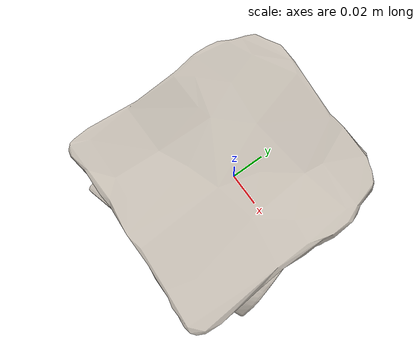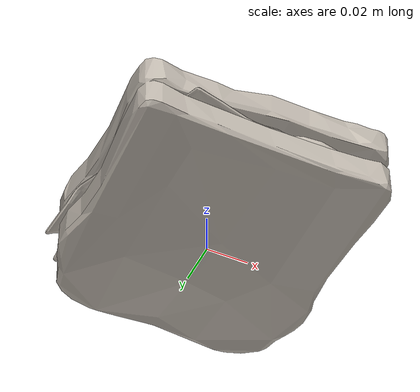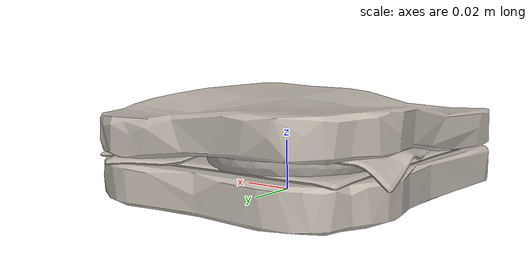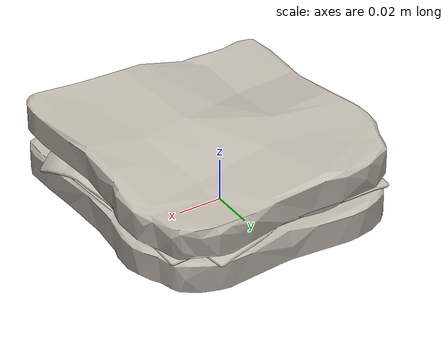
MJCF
<?xml version="1.0" encoding="utf-8"?>
<mujoco model="sandwich">
  <compiler angle="radian" meshdir="assets" texturedir="assets" autolimits="true"/>
  <asset>
    <mesh file="bread.obj"/>
    <mesh file="cheese.obj"/>
    <mesh file="tomatoes.obj"/>
    <mesh file="sandwich_collision.obj"/>
    <mesh file="sandwich_collision_rounded.obj"/>
    <texture type="2d" name="bread" file="bread_toasted_diffuse.png"/>
    <texture type="2d" name="cheese" file="cheese_diffuse.png"/>
    <texture type="2d" name="tomato" file="tomato_diffuse.png"/>
    <material name="bread" specular="0.2" shininess="0.2" texture="bread"/>
    <material name="cheese" specular="0.2" shininess="0.2" texture="cheese"/>
    <material name="tomato" specular="0.2" shininess="0.2" texture="tomato"/>
  </asset>
  <default>
    <default class="sandwich">
      <default class="visual">
        <geom type="mesh" mass="0.1" contype="0" conaffinity="0" group="2"/>
      </default>
      <default class="collision">
        <geom type="mesh" mass="0" group="3" solimp="0.95 0.98 0.001" solref="0.004 1" friction="0.3" priority="1"/>
      </default>
    </default>
  </default>
  <worldbody>
    <body name="sandwich" childclass="sandwich">
      <geom name="bread" mesh="bread" class="visual" material="bread" euler="1.5708 0 0"/>
      <geom name="cheese" mesh="cheese" class="visual" material="cheese" euler="1.5708 0 0"/>
      <geom name="tomatoes" mesh="tomatoes" class="visual" material="tomato" euler="1.5708 0 0"/>
      <geom name="collider" mesh="sandwich_collision" class="collision" euler="1.5708 0 0"/>
      <geom name="collider_rounded" mesh="sandwich_collision_rounded" class="collision" euler="1.5708 0 0"/>
    </body>
  </worldbody>
</mujoco>
